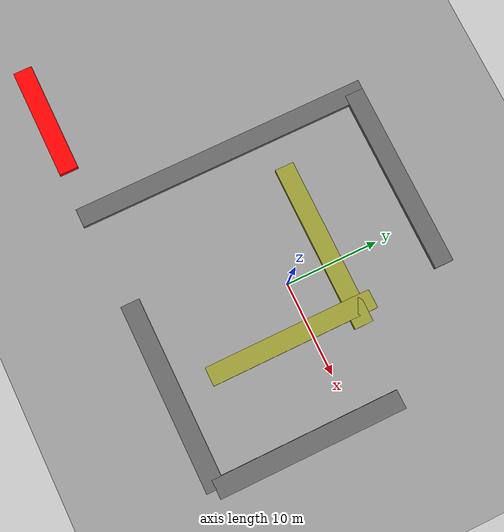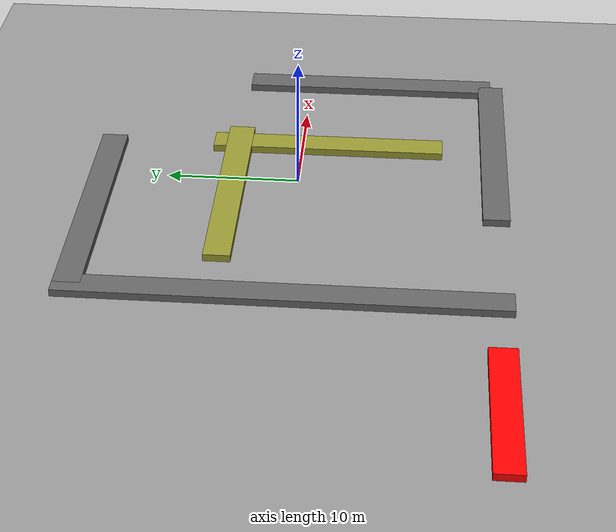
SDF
<sdf version="1.9">
 <world name="default">
  <physics type="ode">
   <max_step_size>0.01</max_step_size>
   <real_time_update_rate>60</real_time_update_rate>
  </physics>
  <model name="ground_plane">
   <static>true</static>
   <link name="link">
    <collision name="collision">
     <geometry><plane><normal>0 0 1</normal><size>100 100</size></plane></geometry>
     <surface><contact><collide_without_contact_bitmask>0x01</collide_without_contact_bitmask></contact></surface>
    </collision>
    <visual name="visual">
     <geometry><plane><normal>0 0 1</normal><size>100 100</size></plane></geometry>
     <material><ambient>0.6 0.6 0.6 1</ambient><diffuse>0.6 0.6 0.6 1</diffuse></material>
    </visual>
   </link>
  </model>
  <model name="wall_north">
   <pose>-5.0 15.0 0 0 0 0</pose>
   <link name="wall_link">
    <gravity>false</gravity>
    <visual name="visual">
     <geometry><box><size>20.0 2.0 1.0</size></box></geometry>
     <material><ambient>0.4 0.4 0.4 1</ambient></material>
    </visual>
   </link>
  </model>
  <model name="wall_east">
   <pose>15.0 -5.0 0 0 0 0</pose>
   <link name="wall_link">
    <gravity>false</gravity>
    <visual name="visual">
     <geometry><box><size>2.0 20.0 1.0</size></box></geometry>
     <material><ambient>0.4 0.4 0.4 1</ambient></material>
    </visual>
   </link>
  </model>
  <model name="wall_west">
   <pose>-15.0 0.0 0 0 0 0</pose>
   <link name="wall_link">
    <gravity>false</gravity>
    <visual name="visual">
     <geometry><box><size>2.0 32.0 1.0</size></box></geometry>
     <material><ambient>0.4 0.4 0.4 1</ambient></material>
    </visual>
   </link>
  </model>
  <model name="wall_south">
   <pose>5.0 -15.0 0 0 0 0</pose>
   <link name="wall_link">
    <gravity>false</gravity>
    <visual name="visual">
     <geometry><box><size>20.0 2.0 1.0</size></box></geometry>
     <material><ambient>0.4 0.4 0.4 1</ambient></material>
    </visual>
   </link>
  </model>
  <model name="baffle_1">
   <pose>-2.0 5.0 0 0 0 0</pose>
   <link name="wall_link">
    <gravity>false</gravity>
    <visual name="visual">
     <geometry><box><size>18.0 2.0 1.0</size></box></geometry>
     <material><ambient>0.6 0.6 0.2 1</ambient></material>
    </visual>
   </link>
  </model>
  <model name="baffle_2">
   <pose>5.0 -2.0 0 0 0 0</pose>
   <link name="wall_link">
    <gravity>false</gravity>
    <visual name="visual">
     <geometry><box><size>2.0 18.0 1.0</size></box></geometry>
     <material><ambient>0.6 0.6 0.2 1</ambient></material>
    </visual>
   </link>
  </model>
  <model name="dynamic_plug">
   <pose>-26.0 -15.0 0 0 0 0</pose>
   <link name="moving_link">
    <gravity>false</gravity>
    <visual name="visual">
     <geometry><box><size>12.0 2.0 1.0</size></box></geometry>
     <material><ambient>1 0 0 1</ambient></material>
    </visual>
   </link>
   <motion>
    <link_name>moving_link</link_name>
    <direction>1 0 0</direction>
    <amplitude>16.0</amplitude>
    <speed>6.0</speed>
    <turnaround_threshold>0.5</turnaround_threshold>
   </motion>
  </model>
 </world>
</sdf>
